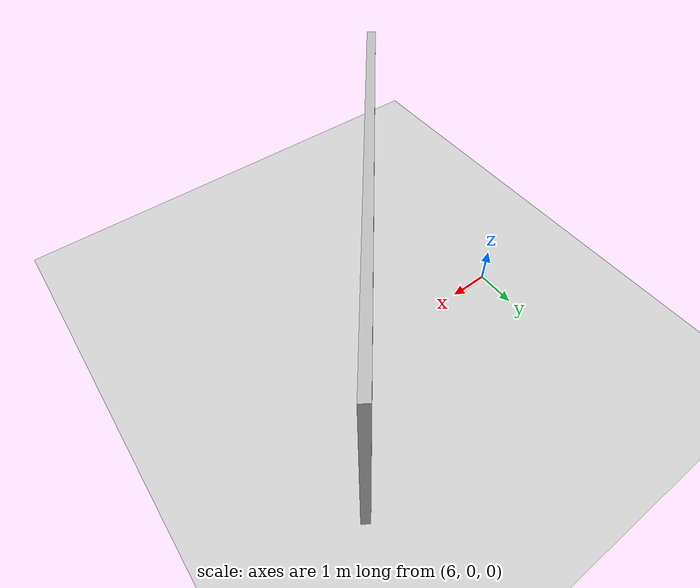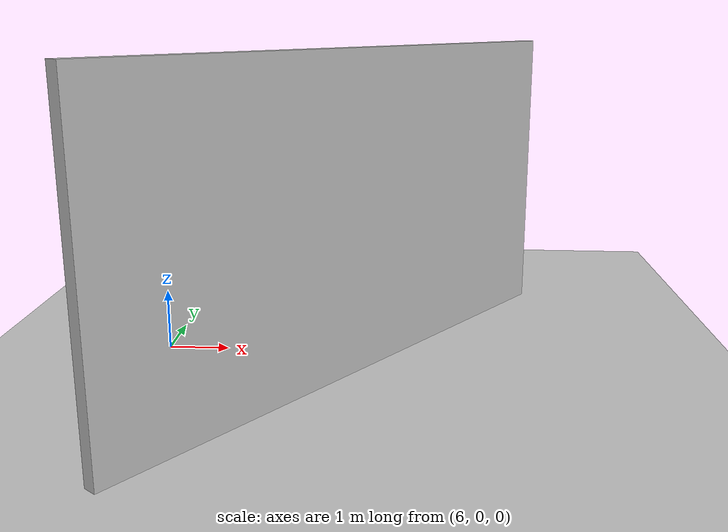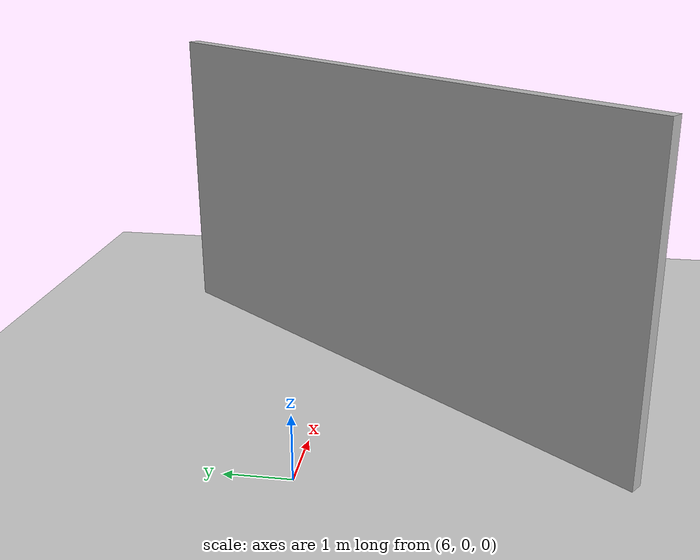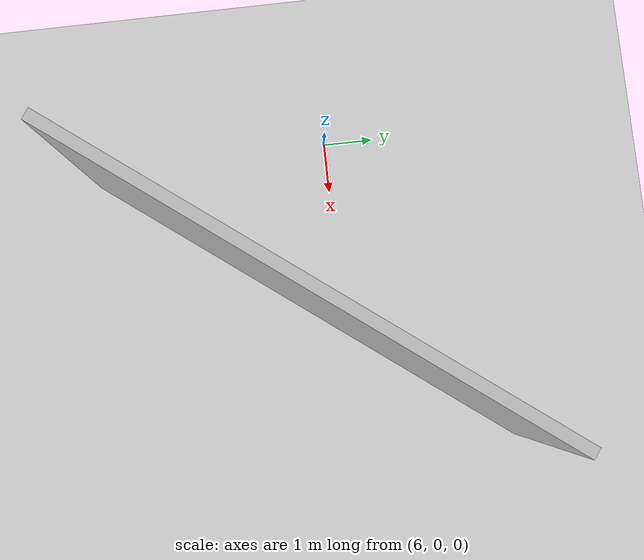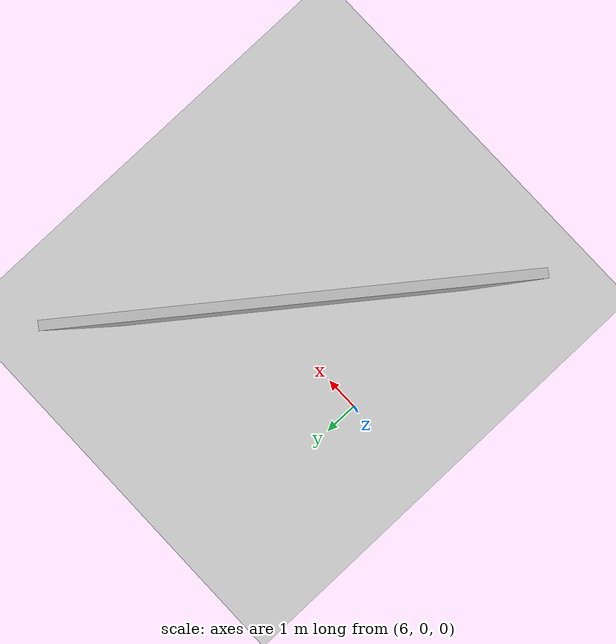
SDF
<sdf version="1.6">
 <world name="default">
  <model name="ground_plane">
   <static>1</static>
   <link name="link">
    <collision name="collision">
     <geometry><plane><normal>0 0 1</normal><size>100 100</size></plane></geometry>
     <surface><friction><ode><mu>100</mu><mu2>50</mu2></ode></friction></surface>
    </collision>
    <visual name="visual">
     <cast_shadows>0</cast_shadows>
     <geometry><plane><normal>0 0 1</normal><size>100 100</size></plane></geometry>
     <material>
      <script><uri>file://media/materials/scripts/gazebo.material</uri><name>Gazebo/Grey</name></script>
     </material>
    </visual>
   </link>
  </model>
  <model name="moon_wall_0">
   <static>1</static>
   <link name="link">
    <visual name="visual">
     <geometry><mesh><uri>model://moon_wall/meshes/moon_wall.dae</uri></mesh></geometry>
    </visual>
   </link>
   <pose>8.58004 -1.44362 0 0 0 -0.620662</pose>
  </model>
 </world>
</sdf>
